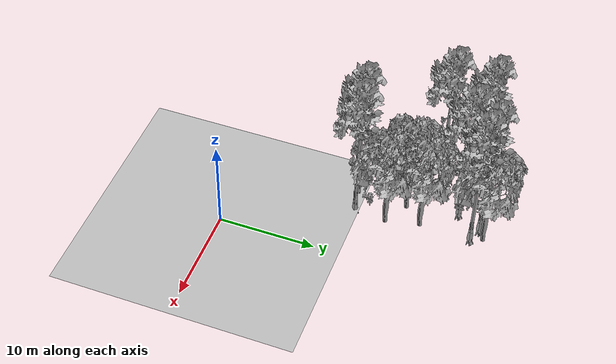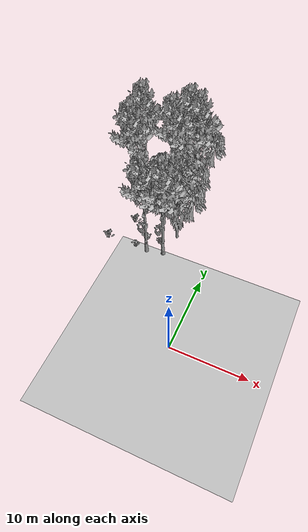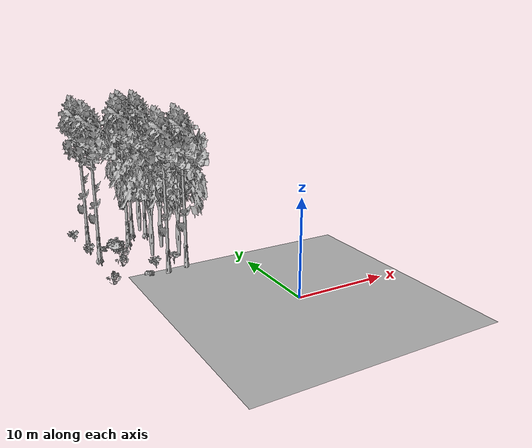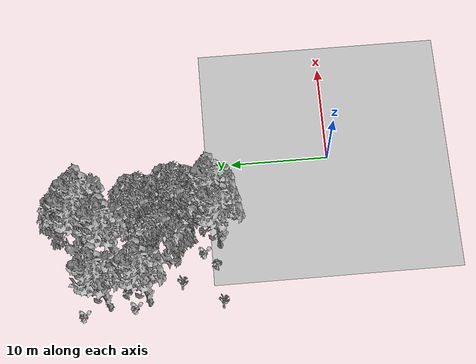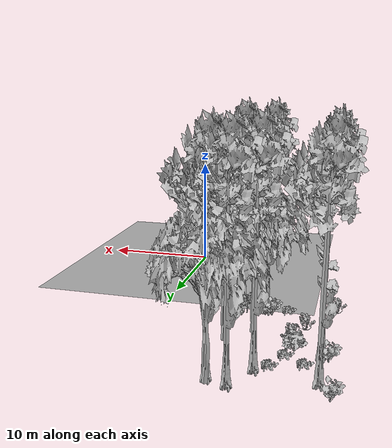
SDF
<sdf version="1.7">
 <world name="default">
  <model name="ground_plane">
   <static>1</static>
   <link name="link">
    <collision name="collision">
     <pose>-50 0 0 0 -0 0</pose>
     <geometry><plane><normal>0 0 1</normal><size>80 80</size></plane></geometry>
     <surface><contact><ode><min_depth>0.01</min_depth><max_vel>0</max_vel></ode></contact></surface>
    </collision>
    <visual name="grass">
     <cast_shadows>0</cast_shadows>
     <geometry>
      <mesh>
       <scale>0.46714285714285714 0.46714285714285714 0.1</scale>
       <uri>file://grass_plane/meshes/grass_plane.dae</uri>
      </mesh>
     </geometry>
    </visual>
   </link>
  </model>
  <model name="Tree 35">
   <static>1</static>
   <pose>-8.409194264973163 16.946527934792982 0 1.57079 -0 0</pose>
   <link name="link">
    <collision name="collision">
     <geometry><mesh><scale>3.5 5 3.5</scale><uri>model://tree_2/meshes/tree_2.obj</uri></mesh></geometry>
    </collision>
    <visual name="visual">
     <geometry><mesh><scale>3.5 5 3.5</scale><uri>model://tree_2/meshes/tree_2.obj</uri></mesh></geometry>
    </visual>
   </link>
  </model>
  <model name="Tree 104">
   <static>1</static>
   <pose>-13.69801629247996 19.081757121425404 0 1.57079 -0 0</pose>
   <link name="link">
    <collision name="collision">
     <geometry><mesh><scale>3.5 5 3.5</scale><uri>model://tree_9/meshes/tree_9.obj</uri></mesh></geometry>
    </collision>
    <visual name="visual">
     <geometry><mesh><scale>3.5 5 3.5</scale><uri>model://tree_9/meshes/tree_9.obj</uri></mesh></geometry>
    </visual>
   </link>
  </model>
  <model name="Tree 179">
   <static>1</static>
   <pose>-9.345673093254117 22.188535138646216 0 1.57079 -0 0</pose>
   <link name="link">
    <collision name="collision">
     <geometry><mesh><scale>3.5 5 3.5</scale><uri>model://tree_9/meshes/tree_9.obj</uri></mesh></geometry>
    </collision>
    <visual name="visual">
     <geometry><mesh><scale>3.5 5 3.5</scale><uri>model://tree_9/meshes/tree_9.obj</uri></mesh></geometry>
    </visual>
   </link>
  </model>
  <model name="Tree 330">
   <static>1</static>
   <pose>-5.815420345518817 15.500496776138625 0 1.57079 -0 0</pose>
   <link name="link">
    <collision name="collision">
     <geometry><mesh><scale>3.5 5 3.5</scale><uri>model://tree_2/meshes/tree_2.obj</uri></mesh></geometry>
    </collision>
    <visual name="visual">
     <geometry><mesh><scale>3.5 5 3.5</scale><uri>model://tree_2/meshes/tree_2.obj</uri></mesh></geometry>
    </visual>
   </link>
  </model>
  <model name="Tree 391">
   <static>1</static>
   <pose>-6.3169538411852315 12.165088365852597 0 1.57079 -0 0</pose>
   <link name="link">
    <collision name="collision">
     <geometry><mesh><scale>3.5 5 3.5</scale><uri>model://tree_9/meshes/tree_9.obj</uri></mesh></geometry>
    </collision>
    <visual name="visual">
     <geometry><mesh><scale>3.5 5 3.5</scale><uri>model://tree_9/meshes/tree_9.obj</uri></mesh></geometry>
    </visual>
   </link>
  </model>
  <model name="Tree 394">
   <static>1</static>
   <pose>-6.869458419020354 25.322262547269673 0 1.57079 -0 0</pose>
   <link name="link">
    <collision name="collision">
     <geometry><mesh><scale>3.5 5 3.5</scale><uri>model://tree_2/meshes/tree_2.obj</uri></mesh></geometry>
    </collision>
    <visual name="visual">
     <geometry><mesh><scale>3.5 5 3.5</scale><uri>model://tree_2/meshes/tree_2.obj</uri></mesh></geometry>
    </visual>
   </link>
  </model>
  <model name="Tree 449">
   <static>1</static>
   <pose>-8.54038592346517 11.722306922172521 0 1.57079 -0 0</pose>
   <link name="link">
    <collision name="collision">
     <geometry><mesh><scale>3.5 5 3.5</scale><uri>model://tree_9/meshes/tree_9.obj</uri></mesh></geometry>
    </collision>
    <visual name="visual">
     <geometry><mesh><scale>3.5 5 3.5</scale><uri>model://tree_9/meshes/tree_9.obj</uri></mesh></geometry>
    </visual>
   </link>
  </model>
  <model name="Tree 463">
   <static>1</static>
   <pose>-6.569689598505228 18.89357651600222 0 1.57079 -0 0</pose>
   <link name="link">
    <collision name="collision">
     <geometry><mesh><scale>3.5 5 3.5</scale><uri>model://tree_2/meshes/tree_2.obj</uri></mesh></geometry>
    </collision>
    <visual name="visual">
     <geometry><mesh><scale>3.5 5 3.5</scale><uri>model://tree_2/meshes/tree_2.obj</uri></mesh></geometry>
    </visual>
   </link>
  </model>
  <model name="Tree 554">
   <static>1</static>
   <pose>-8.016934098863462 24.686812077920436 0 1.57079 -0 0</pose>
   <link name="link">
    <collision name="collision">
     <geometry><mesh><scale>3.5 5 3.5</scale><uri>model://tree_9/meshes/tree_9.obj</uri></mesh></geometry>
    </collision>
    <visual name="visual">
     <geometry><mesh><scale>3.5 5 3.5</scale><uri>model://tree_9/meshes/tree_9.obj</uri></mesh></geometry>
    </visual>
   </link>
  </model>
  <model name="Tree 595">
   <static>1</static>
   <pose>-6.495521341210313 24.135633152760846 0 1.57079 -0 0</pose>
   <link name="link">
    <collision name="collision">
     <geometry><mesh><scale>3.5 5 3.5</scale><uri>model://tree_9/meshes/tree_9.obj</uri></mesh></geometry>
    </collision>
    <visual name="visual">
     <geometry><mesh><scale>3.5 5 3.5</scale><uri>model://tree_9/meshes/tree_9.obj</uri></mesh></geometry>
    </visual>
   </link>
  </model>
  <model name="Tree 618">
   <static>1</static>
   <pose>-13.856221745871832 23.034902664880512 0 1.57079 -0 0</pose>
   <link name="link">
    <collision name="collision">
     <geometry><mesh><scale>3.5 5 3.5</scale><uri>model://tree_9/meshes/tree_9.obj</uri></mesh></geometry>
    </collision>
    <visual name="visual">
     <geometry><mesh><scale>3.5 5 3.5</scale><uri>model://tree_9/meshes/tree_9.obj</uri></mesh></geometry>
    </visual>
   </link>
  </model>
  <model name="Bush 55">
   <static>1</static>
   <pose>-14.380143158779003 11.652735240787138 0 1.57079 -0 0</pose>
   <link name="link">
    <collision name="collision">
     <geometry><mesh><scale>2 2 2</scale><uri>model://bush_4/meshes/bush_4.obj</uri></mesh></geometry>
     <surface><contact><collide_without_contact>false</collide_without_contact></contact></surface>
    </collision>
    <visual name="visual">
     <geometry><mesh><scale>2 2 2</scale><uri>model://bush_4/meshes/bush_4.obj</uri></mesh></geometry>
    </visual>
   </link>
  </model>
  <model name="Bush 89">
   <static>1</static>
   <pose>-14.316369095127026 20.486702199069747 0 1.57079 -0 0</pose>
   <link name="link">
    <collision name="collision">
     <geometry><mesh><scale>2 2 2</scale><uri>model://bush_0/meshes/bush_0.obj</uri></mesh></geometry>
     <surface><contact><collide_without_contact>false</collide_without_contact></contact></surface>
    </collision>
    <visual name="visual">
     <geometry><mesh><scale>2 2 2</scale><uri>model://bush_0/meshes/bush_0.obj</uri></mesh></geometry>
    </visual>
   </link>
  </model>
  <model name="Bush 177">
   <static>1</static>
   <pose>-12.747923253668628 21.272700168408292 0 1.57079 -0 0</pose>
   <link name="link">
    <collision name="collision">
     <geometry><mesh><scale>2 2 2</scale><uri>model://bush_2/meshes/bush_2.obj</uri></mesh></geometry>
     <surface><contact><collide_without_contact>false</collide_without_contact></contact></surface>
    </collision>
    <visual name="visual">
     <geometry><mesh><scale>2 2 2</scale><uri>model://bush_2/meshes/bush_2.obj</uri></mesh></geometry>
    </visual>
   </link>
  </model>
  <model name="Bush 178">
   <static>1</static>
   <pose>-7.176634683944879 13.432624402782515 0 1.57079 -0 0</pose>
   <link name="link">
    <collision name="collision">
     <geometry><mesh><scale>2 2 2</scale><uri>model://bush_5/meshes/bush_5.obj</uri></mesh></geometry>
     <surface><contact><collide_without_contact>false</collide_without_contact></contact></surface>
    </collision>
    <visual name="visual">
     <geometry><mesh><scale>2 2 2</scale><uri>model://bush_5/meshes/bush_5.obj</uri></mesh></geometry>
    </visual>
   </link>
  </model>
  <model name="Bush 196">
   <static>1</static>
   <pose>-11.38956228748599 17.748657038279 0 1.57079 -0 0</pose>
   <link name="link">
    <collision name="collision">
     <geometry><mesh><scale>2 2 2</scale><uri>model://bush_4/meshes/bush_4.obj</uri></mesh></geometry>
     <surface><contact><collide_without_contact>false</collide_without_contact></contact></surface>
    </collision>
    <visual name="visual">
     <geometry><mesh><scale>2 2 2</scale><uri>model://bush_4/meshes/bush_4.obj</uri></mesh></geometry>
    </visual>
   </link>
  </model>
  <model name="Bush 269">
   <static>1</static>
   <pose>-14.752298345727787 25.57033186739588 0 1.57079 -0 0</pose>
   <link name="link">
    <collision name="collision">
     <geometry><mesh><scale>2 2 2</scale><uri>model://bush_0/meshes/bush_0.obj</uri></mesh></geometry>
     <surface><contact><collide_without_contact>false</collide_without_contact></contact></surface>
    </collision>
    <visual name="visual">
     <geometry><mesh><scale>2 2 2</scale><uri>model://bush_0/meshes/bush_0.obj</uri></mesh></geometry>
    </visual>
   </link>
  </model>
  <model name="Bush 301">
   <static>1</static>
   <pose>-10.413813097884585 22.017974599746125 0 1.57079 -0 0</pose>
   <link name="link">
    <collision name="collision">
     <geometry><mesh><scale>2 2 2</scale><uri>model://bush_2/meshes/bush_2.obj</uri></mesh></geometry>
     <surface><contact><collide_without_contact>false</collide_without_contact></contact></surface>
    </collision>
    <visual name="visual">
     <geometry><mesh><scale>2 2 2</scale><uri>model://bush_2/meshes/bush_2.obj</uri></mesh></geometry>
    </visual>
   </link>
  </model>
  <model name="Bush 338">
   <static>1</static>
   <pose>-12.191903249783245 15.611243247392288 0 1.57079 -0 0</pose>
   <link name="link">
    <collision name="collision">
     <geometry><mesh><scale>2 2 2</scale><uri>model://bush_4/meshes/bush_4.obj</uri></mesh></geometry>
     <surface><contact><collide_without_contact>false</collide_without_contact></contact></surface>
    </collision>
    <visual name="visual">
     <geometry><mesh><scale>2 2 2</scale><uri>model://bush_4/meshes/bush_4.obj</uri></mesh></geometry>
    </visual>
   </link>
  </model>
  <model name="Bush 369">
   <static>1</static>
   <pose>-11.266878457299192 20.212229309303495 0 1.57079 -0 0</pose>
   <link name="link">
    <collision name="collision">
     <geometry><mesh><scale>2 2 2</scale><uri>model://bush_2/meshes/bush_2.obj</uri></mesh></geometry>
     <surface><contact><collide_without_contact>false</collide_without_contact></contact></surface>
    </collision>
    <visual name="visual">
     <geometry><mesh><scale>2 2 2</scale><uri>model://bush_2/meshes/bush_2.obj</uri></mesh></geometry>
    </visual>
   </link>
  </model>
  <model name="Bush 474">
   <static>1</static>
   <pose>-9.26190351466245 13.437610472713672 0 1.57079 -0 0</pose>
   <link name="link">
    <collision name="collision">
     <geometry><mesh><scale>2 2 2</scale><uri>model://bush_0/meshes/bush_0.obj</uri></mesh></geometry>
     <surface><contact><collide_without_contact>false</collide_without_contact></contact></surface>
    </collision>
    <visual name="visual">
     <geometry><mesh><scale>2 2 2</scale><uri>model://bush_0/meshes/bush_0.obj</uri></mesh></geometry>
    </visual>
   </link>
  </model>
  <model name="Bush 527">
   <static>1</static>
   <pose>-11.809479314034121 19.459937894522767 0 1.57079 -0 0</pose>
   <link name="link">
    <collision name="collision">
     <geometry><mesh><scale>2 2 2</scale><uri>model://bush_1/meshes/bush_1.obj</uri></mesh></geometry>
     <surface><contact><collide_without_contact>false</collide_without_contact></contact></surface>
    </collision>
    <visual name="visual">
     <geometry><mesh><scale>2 2 2</scale><uri>model://bush_1/meshes/bush_1.obj</uri></mesh></geometry>
    </visual>
   </link>
  </model>
  <model name="Bush 543">
   <static>1</static>
   <pose>-10.476480875419409 12.187702807346959 0 1.57079 -0 0</pose>
   <link name="link">
    <collision name="collision">
     <geometry><mesh><scale>2 2 2</scale><uri>model://bush_2/meshes/bush_2.obj</uri></mesh></geometry>
     <surface><contact><collide_without_contact>false</collide_without_contact></contact></surface>
    </collision>
    <visual name="visual">
     <geometry><mesh><scale>2 2 2</scale><uri>model://bush_2/meshes/bush_2.obj</uri></mesh></geometry>
    </visual>
   </link>
  </model>
 </world>
</sdf>
